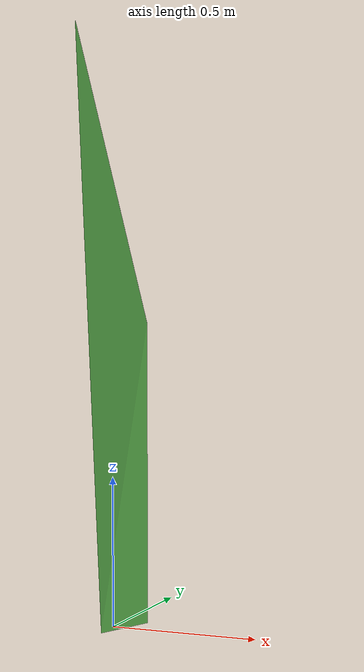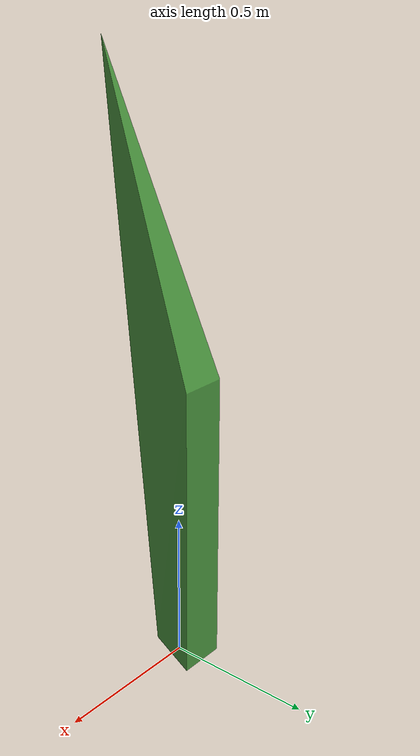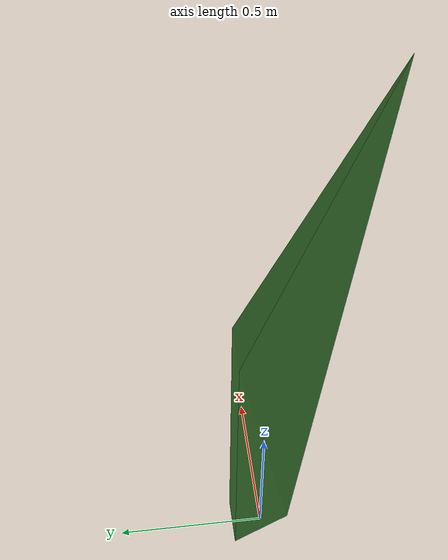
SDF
<?xml version="1.0" ?>
<sdf version="1.6">
  <model name="grass_blade">
    <static>true</static>
    <link name="link">
      <visual name="grass_blade">
        <geometry>
          <mesh>
            <uri>model://grass_blade/meshes/model.dae</uri>
          </mesh>
        </geometry>
        <material>
          <script>
            <uri>model://grass_blade/materials/scripts/</uri>
            <uri>model://grass_blade/materials/textures/</uri>
						<name>Grass</name>
          </script>
        </material>
      </visual>
    </link>
  </model>
</sdf>
